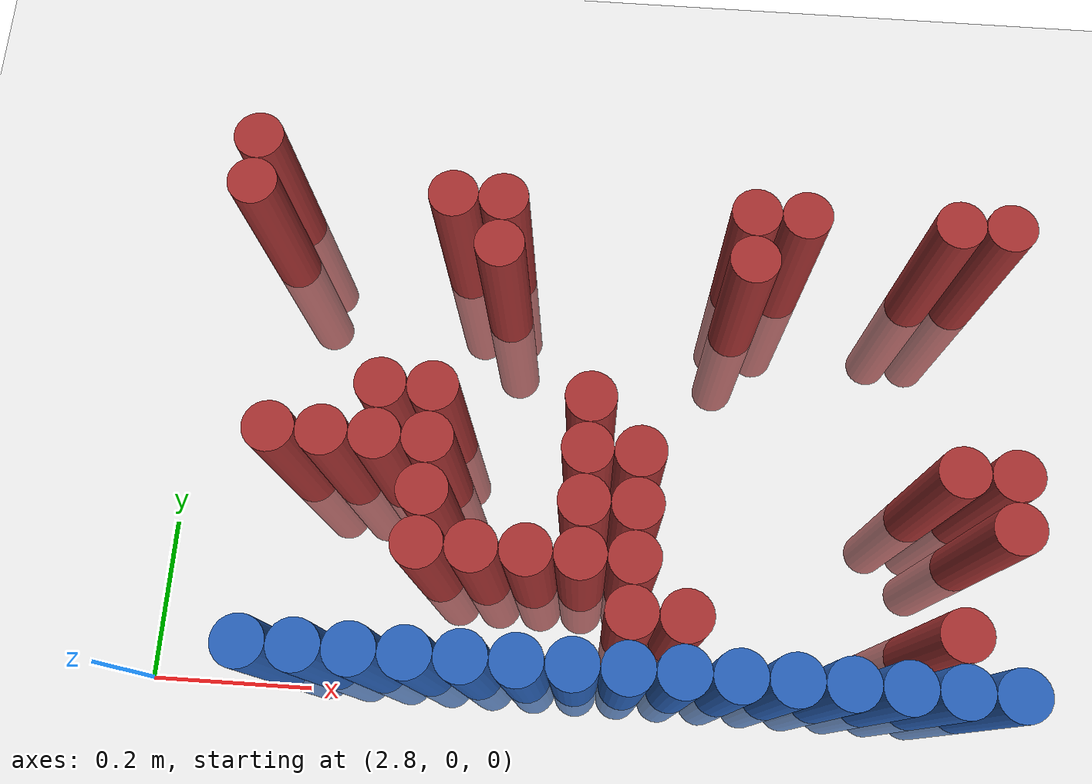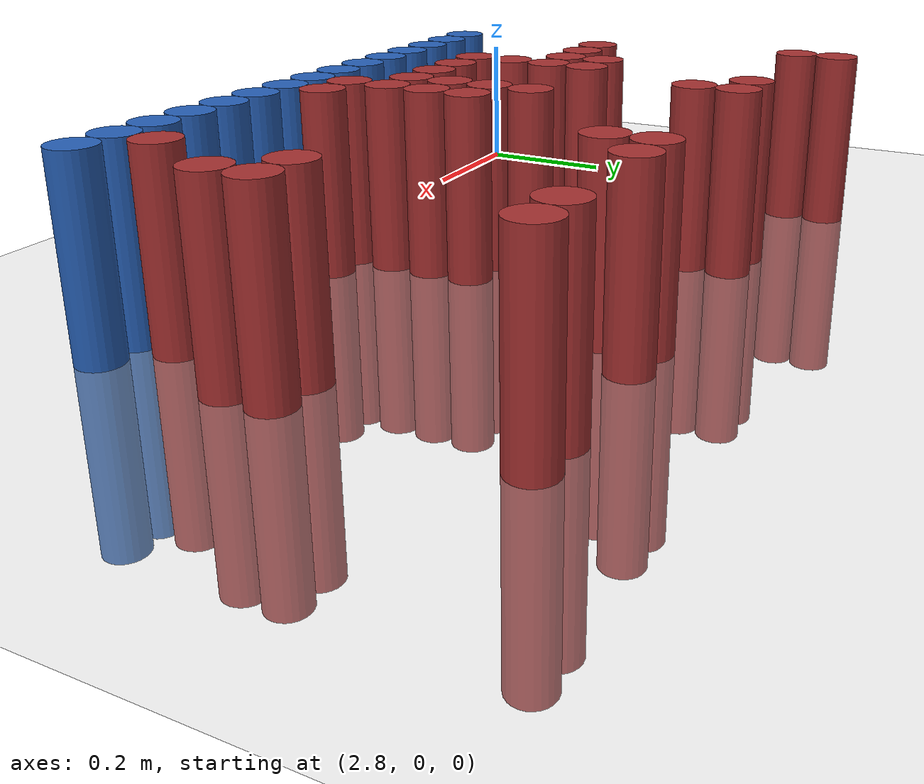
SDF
<sdf version="1.6">
 <world name="default">
  <model name="ground_plane">
   <static>1</static>
   <link name="link">
    <collision name="collision">
     <geometry><plane><normal>0 0 1</normal><size>100 100</size></plane></geometry>
     <surface><friction><ode><mu>100</mu><mu2>50</mu2></ode></friction></surface>
    </collision>
    <visual name="visual">
     <cast_shadows>0</cast_shadows>
     <geometry><plane><normal>0 0 1</normal><size>100 100</size></plane></geometry>
     <material>
      <script><uri>file://media/materials/scripts/gazebo.material</uri><name>Gazebo/Grey</name></script>
     </material>
    </visual>
   </link>
  </model>
  <model name="unit_cylinder_220">
   <static>1</static>
   <pose>2.910000 0.630000 0.000000 0.000000 0.000000 0.000000</pose>
   <link name="link">
    <inertial>
     <mass>1</mass>
     <inertia><ixx>0.145833</ixx><ixy>0</ixy><ixz>0</ixz><iyy>0.145833</iyy><iyz>0</iyz><izz>0.125</izz></inertia>
    </inertial>
    <collision name="collision">
     <geometry><cylinder><radius>0.030000</radius><length>0.5</length></cylinder></geometry>
    </collision>
    <visual name="visual">
     <geometry><cylinder><radius>0.030000</radius><length>0.5</length></cylinder></geometry>
     <material>
      <ambient>0.648000 0.192000 0.192000 1</ambient>
      <diffuse>0.648000 0.192000 0.192000 1</diffuse>
     </material>
     <material>
      <script><name>Gazebo/Grey</name><uri>file://media/materials/scripts/gazebo.material</uri></script>
     </material>
    </visual>
   </link>
  </model>
  <model name="unit_cylinder_228">
   <static>1</static>
   <pose>2.910000 0.570000 0.000000 0.000000 0.000000 0.000000</pose>
   <link name="link">
    <inertial>
     <mass>1</mass>
     <inertia><ixx>0.145833</ixx><ixy>0</ixy><ixz>0</ixz><iyy>0.145833</iyy><iyz>0</iyz><izz>0.125</izz></inertia>
    </inertial>
    <collision name="collision">
     <geometry><cylinder><radius>0.030000</radius><length>0.5</length></cylinder></geometry>
    </collision>
    <visual name="visual">
     <geometry><cylinder><radius>0.030000</radius><length>0.5</length></cylinder></geometry>
     <material>
      <ambient>0.648000 0.192000 0.192000 1</ambient>
      <diffuse>0.648000 0.192000 0.192000 1</diffuse>
     </material>
     <material>
      <script><name>Gazebo/Grey</name><uri>file://media/materials/scripts/gazebo.material</uri></script>
     </material>
    </visual>
   </link>
  </model>
  <model name="unit_cylinder_229">
   <static>1</static>
   <pose>3.150000 0.570000 0.000000 0.000000 0.000000 0.000000</pose>
   <link name="link">
    <inertial>
     <mass>1</mass>
     <inertia><ixx>0.145833</ixx><ixy>0</ixy><ixz>0</ixz><iyy>0.145833</iyy><iyz>0</iyz><izz>0.125</izz></inertia>
    </inertial>
    <collision name="collision">
     <geometry><cylinder><radius>0.030000</radius><length>0.5</length></cylinder></geometry>
    </collision>
    <visual name="visual">
     <geometry><cylinder><radius>0.030000</radius><length>0.5</length></cylinder></geometry>
     <material>
      <ambient>0.648000 0.192000 0.192000 1</ambient>
      <diffuse>0.648000 0.192000 0.192000 1</diffuse>
     </material>
     <material>
      <script><name>Gazebo/Grey</name><uri>file://media/materials/scripts/gazebo.material</uri></script>
     </material>
    </visual>
   </link>
  </model>
  <model name="unit_cylinder_230">
   <static>1</static>
   <pose>3.210000 0.570000 0.000000 0.000000 0.000000 0.000000</pose>
   <link name="link">
    <inertial>
     <mass>1</mass>
     <inertia><ixx>0.145833</ixx><ixy>0</ixy><ixz>0</ixz><iyy>0.145833</iyy><iyz>0</iyz><izz>0.125</izz></inertia>
    </inertial>
    <collision name="collision">
     <geometry><cylinder><radius>0.030000</radius><length>0.5</length></cylinder></geometry>
    </collision>
    <visual name="visual">
     <geometry><cylinder><radius>0.030000</radius><length>0.5</length></cylinder></geometry>
     <material>
      <ambient>0.648000 0.192000 0.192000 1</ambient>
      <diffuse>0.648000 0.192000 0.192000 1</diffuse>
     </material>
     <material>
      <script><name>Gazebo/Grey</name><uri>file://media/materials/scripts/gazebo.material</uri></script>
     </material>
    </visual>
   </link>
  </model>
  <model name="unit_cylinder_231">
   <static>1</static>
   <pose>3.510000 0.570000 0.000000 0.000000 0.000000 0.000000</pose>
   <link name="link">
    <inertial>
     <mass>1</mass>
     <inertia><ixx>0.145833</ixx><ixy>0</ixy><ixz>0</ixz><iyy>0.145833</iyy><iyz>0</iyz><izz>0.125</izz></inertia>
    </inertial>
    <collision name="collision">
     <geometry><cylinder><radius>0.030000</radius><length>0.5</length></cylinder></geometry>
    </collision>
    <visual name="visual">
     <geometry><cylinder><radius>0.030000</radius><length>0.5</length></cylinder></geometry>
     <material>
      <ambient>0.648000 0.192000 0.192000 1</ambient>
      <diffuse>0.648000 0.192000 0.192000 1</diffuse>
     </material>
     <material>
      <script><name>Gazebo/Grey</name><uri>file://media/materials/scripts/gazebo.material</uri></script>
     </material>
    </visual>
   </link>
  </model>
  <model name="unit_cylinder_232">
   <static>1</static>
   <pose>3.570000 0.570000 0.000000 0.000000 0.000000 0.000000</pose>
   <link name="link">
    <inertial>
     <mass>1</mass>
     <inertia><ixx>0.145833</ixx><ixy>0</ixy><ixz>0</ixz><iyy>0.145833</iyy><iyz>0</iyz><izz>0.125</izz></inertia>
    </inertial>
    <collision name="collision">
     <geometry><cylinder><radius>0.030000</radius><length>0.5</length></cylinder></geometry>
    </collision>
    <visual name="visual">
     <geometry><cylinder><radius>0.030000</radius><length>0.5</length></cylinder></geometry>
     <material>
      <ambient>0.648000 0.192000 0.192000 1</ambient>
      <diffuse>0.648000 0.192000 0.192000 1</diffuse>
     </material>
     <material>
      <script><name>Gazebo/Grey</name><uri>file://media/materials/scripts/gazebo.material</uri></script>
     </material>
    </visual>
   </link>
  </model>
  <model name="unit_cylinder_233">
   <static>1</static>
   <pose>3.750000 0.570000 0.000000 0.000000 0.000000 0.000000</pose>
   <link name="link">
    <inertial>
     <mass>1</mass>
     <inertia><ixx>0.145833</ixx><ixy>0</ixy><ixz>0</ixz><iyy>0.145833</iyy><iyz>0</iyz><izz>0.125</izz></inertia>
    </inertial>
    <collision name="collision">
     <geometry><cylinder><radius>0.030000</radius><length>0.5</length></cylinder></geometry>
    </collision>
    <visual name="visual">
     <geometry><cylinder><radius>0.030000</radius><length>0.5</length></cylinder></geometry>
     <material>
      <ambient>0.648000 0.192000 0.192000 1</ambient>
      <diffuse>0.648000 0.192000 0.192000 1</diffuse>
     </material>
     <material>
      <script><name>Gazebo/Grey</name><uri>file://media/materials/scripts/gazebo.material</uri></script>
     </material>
    </visual>
   </link>
  </model>
  <model name="unit_cylinder_234">
   <static>1</static>
   <pose>3.810000 0.570000 0.000000 0.000000 0.000000 0.000000</pose>
   <link name="link">
    <inertial>
     <mass>1</mass>
     <inertia><ixx>0.145833</ixx><ixy>0</ixy><ixz>0</ixz><iyy>0.145833</iyy><iyz>0</iyz><izz>0.125</izz></inertia>
    </inertial>
    <collision name="collision">
     <geometry><cylinder><radius>0.030000</radius><length>0.5</length></cylinder></geometry>
    </collision>
    <visual name="visual">
     <geometry><cylinder><radius>0.030000</radius><length>0.5</length></cylinder></geometry>
     <material>
      <ambient>0.648000 0.192000 0.192000 1</ambient>
      <diffuse>0.648000 0.192000 0.192000 1</diffuse>
     </material>
     <material>
      <script><name>Gazebo/Grey</name><uri>file://media/materials/scripts/gazebo.material</uri></script>
     </material>
    </visual>
   </link>
  </model>
  <model name="unit_cylinder_240">
   <static>1</static>
   <pose>3.210000 0.510000 0.000000 0.000000 0.000000 0.000000</pose>
   <link name="link">
    <inertial>
     <mass>1</mass>
     <inertia><ixx>0.145833</ixx><ixy>0</ixy><ixz>0</ixz><iyy>0.145833</iyy><iyz>0</iyz><izz>0.125</izz></inertia>
    </inertial>
    <collision name="collision">
     <geometry><cylinder><radius>0.030000</radius><length>0.5</length></cylinder></geometry>
    </collision>
    <visual name="visual">
     <geometry><cylinder><radius>0.030000</radius><length>0.5</length></cylinder></geometry>
     <material>
      <ambient>0.648000 0.192000 0.192000 1</ambient>
      <diffuse>0.648000 0.192000 0.192000 1</diffuse>
     </material>
     <material>
      <script><name>Gazebo/Grey</name><uri>file://media/materials/scripts/gazebo.material</uri></script>
     </material>
    </visual>
   </link>
  </model>
  <model name="unit_cylinder_241">
   <static>1</static>
   <pose>3.510000 0.510000 0.000000 0.000000 0.000000 0.000000</pose>
   <link name="link">
    <inertial>
     <mass>1</mass>
     <inertia><ixx>0.145833</ixx><ixy>0</ixy><ixz>0</ixz><iyy>0.145833</iyy><iyz>0</iyz><izz>0.125</izz></inertia>
    </inertial>
    <collision name="collision">
     <geometry><cylinder><radius>0.030000</radius><length>0.5</length></cylinder></geometry>
    </collision>
    <visual name="visual">
     <geometry><cylinder><radius>0.030000</radius><length>0.5</length></cylinder></geometry>
     <material>
      <ambient>0.648000 0.192000 0.192000 1</ambient>
      <diffuse>0.648000 0.192000 0.192000 1</diffuse>
     </material>
     <material>
      <script><name>Gazebo/Grey</name><uri>file://media/materials/scripts/gazebo.material</uri></script>
     </material>
    </visual>
   </link>
  </model>
  <model name="unit_cylinder_254">
   <static>1</static>
   <pose>3.090000 0.330000 0.000000 0.000000 0.000000 0.000000</pose>
   <link name="link">
    <inertial>
     <mass>1</mass>
     <inertia><ixx>0.145833</ixx><ixy>0</ixy><ixz>0</ixz><iyy>0.145833</iyy><iyz>0</iyz><izz>0.125</izz></inertia>
    </inertial>
    <collision name="collision">
     <geometry><cylinder><radius>0.030000</radius><length>0.5</length></cylinder></geometry>
    </collision>
    <visual name="visual">
     <geometry><cylinder><radius>0.030000</radius><length>0.5</length></cylinder></geometry>
     <material>
      <ambient>0.648000 0.192000 0.192000 1</ambient>
      <diffuse>0.648000 0.192000 0.192000 1</diffuse>
     </material>
     <material>
      <script><name>Gazebo/Grey</name><uri>file://media/materials/scripts/gazebo.material</uri></script>
     </material>
    </visual>
   </link>
  </model>
  <model name="unit_cylinder_255">
   <static>1</static>
   <pose>3.150000 0.330000 0.000000 0.000000 0.000000 0.000000</pose>
   <link name="link">
    <inertial>
     <mass>1</mass>
     <inertia><ixx>0.145833</ixx><ixy>0</ixy><ixz>0</ixz><iyy>0.145833</iyy><iyz>0</iyz><izz>0.125</izz></inertia>
    </inertial>
    <collision name="collision">
     <geometry><cylinder><radius>0.030000</radius><length>0.5</length></cylinder></geometry>
    </collision>
    <visual name="visual">
     <geometry><cylinder><radius>0.030000</radius><length>0.5</length></cylinder></geometry>
     <material>
      <ambient>0.648000 0.192000 0.192000 1</ambient>
      <diffuse>0.648000 0.192000 0.192000 1</diffuse>
     </material>
     <material>
      <script><name>Gazebo/Grey</name><uri>file://media/materials/scripts/gazebo.material</uri></script>
     </material>
    </visual>
   </link>
  </model>
  <model name="unit_cylinder_256">
   <static>1</static>
   <pose>3.330000 0.330000 0.000000 0.000000 0.000000 0.000000</pose>
   <link name="link">
    <inertial>
     <mass>1</mass>
     <inertia><ixx>0.145833</ixx><ixy>0</ixy><ixz>0</ixz><iyy>0.145833</iyy><iyz>0</iyz><izz>0.125</izz></inertia>
    </inertial>
    <collision name="collision">
     <geometry><cylinder><radius>0.030000</radius><length>0.5</length></cylinder></geometry>
    </collision>
    <visual name="visual">
     <geometry><cylinder><radius>0.030000</radius><length>0.5</length></cylinder></geometry>
     <material>
      <ambient>0.648000 0.192000 0.192000 1</ambient>
      <diffuse>0.648000 0.192000 0.192000 1</diffuse>
     </material>
     <material>
      <script><name>Gazebo/Grey</name><uri>file://media/materials/scripts/gazebo.material</uri></script>
     </material>
    </visual>
   </link>
  </model>
  <model name="unit_cylinder_262">
   <static>1</static>
   <pose>2.970000 0.270000 0.000000 0.000000 0.000000 0.000000</pose>
   <link name="link">
    <inertial>
     <mass>1</mass>
     <inertia><ixx>0.145833</ixx><ixy>0</ixy><ixz>0</ixz><iyy>0.145833</iyy><iyz>0</iyz><izz>0.125</izz></inertia>
    </inertial>
    <collision name="collision">
     <geometry><cylinder><radius>0.030000</radius><length>0.5</length></cylinder></geometry>
    </collision>
    <visual name="visual">
     <geometry><cylinder><radius>0.030000</radius><length>0.5</length></cylinder></geometry>
     <material>
      <ambient>0.648000 0.192000 0.192000 1</ambient>
      <diffuse>0.648000 0.192000 0.192000 1</diffuse>
     </material>
     <material>
      <script><name>Gazebo/Grey</name><uri>file://media/materials/scripts/gazebo.material</uri></script>
     </material>
    </visual>
   </link>
  </model>
  <model name="unit_cylinder_263">
   <static>1</static>
   <pose>3.030000 0.270000 0.000000 0.000000 0.000000 0.000000</pose>
   <link name="link">
    <inertial>
     <mass>1</mass>
     <inertia><ixx>0.145833</ixx><ixy>0</ixy><ixz>0</ixz><iyy>0.145833</iyy><iyz>0</iyz><izz>0.125</izz></inertia>
    </inertial>
    <collision name="collision">
     <geometry><cylinder><radius>0.030000</radius><length>0.5</length></cylinder></geometry>
    </collision>
    <visual name="visual">
     <geometry><cylinder><radius>0.030000</radius><length>0.5</length></cylinder></geometry>
     <material>
      <ambient>0.648000 0.192000 0.192000 1</ambient>
      <diffuse>0.648000 0.192000 0.192000 1</diffuse>
     </material>
     <material>
      <script><name>Gazebo/Grey</name><uri>file://media/materials/scripts/gazebo.material</uri></script>
     </material>
    </visual>
   </link>
  </model>
  <model name="unit_cylinder_264">
   <static>1</static>
   <pose>3.090000 0.270000 0.000000 0.000000 0.000000 0.000000</pose>
   <link name="link">
    <inertial>
     <mass>1</mass>
     <inertia><ixx>0.145833</ixx><ixy>0</ixy><ixz>0</ixz><iyy>0.145833</iyy><iyz>0</iyz><izz>0.125</izz></inertia>
    </inertial>
    <collision name="collision">
     <geometry><cylinder><radius>0.030000</radius><length>0.5</length></cylinder></geometry>
    </collision>
    <visual name="visual">
     <geometry><cylinder><radius>0.030000</radius><length>0.5</length></cylinder></geometry>
     <material>
      <ambient>0.648000 0.192000 0.192000 1</ambient>
      <diffuse>0.648000 0.192000 0.192000 1</diffuse>
     </material>
     <material>
      <script><name>Gazebo/Grey</name><uri>file://media/materials/scripts/gazebo.material</uri></script>
     </material>
    </visual>
   </link>
  </model>
  <model name="unit_cylinder_265">
   <static>1</static>
   <pose>3.150000 0.270000 0.000000 0.000000 0.000000 0.000000</pose>
   <link name="link">
    <inertial>
     <mass>1</mass>
     <inertia><ixx>0.145833</ixx><ixy>0</ixy><ixz>0</ixz><iyy>0.145833</iyy><iyz>0</iyz><izz>0.125</izz></inertia>
    </inertial>
    <collision name="collision">
     <geometry><cylinder><radius>0.030000</radius><length>0.5</length></cylinder></geometry>
    </collision>
    <visual name="visual">
     <geometry><cylinder><radius>0.030000</radius><length>0.5</length></cylinder></geometry>
     <material>
      <ambient>0.648000 0.192000 0.192000 1</ambient>
      <diffuse>0.648000 0.192000 0.192000 1</diffuse>
     </material>
     <material>
      <script><name>Gazebo/Grey</name><uri>file://media/materials/scripts/gazebo.material</uri></script>
     </material>
    </visual>
   </link>
  </model>
  <model name="unit_cylinder_266">
   <static>1</static>
   <pose>3.330000 0.270000 0.000000 0.000000 0.000000 0.000000</pose>
   <link name="link">
    <inertial>
     <mass>1</mass>
     <inertia><ixx>0.145833</ixx><ixy>0</ixy><ixz>0</ixz><iyy>0.145833</iyy><iyz>0</iyz><izz>0.125</izz></inertia>
    </inertial>
    <collision name="collision">
     <geometry><cylinder><radius>0.030000</radius><length>0.5</length></cylinder></geometry>
    </collision>
    <visual name="visual">
     <geometry><cylinder><radius>0.030000</radius><length>0.5</length></cylinder></geometry>
     <material>
      <ambient>0.648000 0.192000 0.192000 1</ambient>
      <diffuse>0.648000 0.192000 0.192000 1</diffuse>
     </material>
     <material>
      <script><name>Gazebo/Grey</name><uri>file://media/materials/scripts/gazebo.material</uri></script>
     </material>
    </visual>
   </link>
  </model>
  <model name="unit_cylinder_267">
   <static>1</static>
   <pose>3.390000 0.270000 0.000000 0.000000 0.000000 0.000000</pose>
   <link name="link">
    <inertial>
     <mass>1</mass>
     <inertia><ixx>0.145833</ixx><ixy>0</ixy><ixz>0</ixz><iyy>0.145833</iyy><iyz>0</iyz><izz>0.125</izz></inertia>
    </inertial>
    <collision name="collision">
     <geometry><cylinder><radius>0.030000</radius><length>0.5</length></cylinder></geometry>
    </collision>
    <visual name="visual">
     <geometry><cylinder><radius>0.030000</radius><length>0.5</length></cylinder></geometry>
     <material>
      <ambient>0.648000 0.192000 0.192000 1</ambient>
      <diffuse>0.648000 0.192000 0.192000 1</diffuse>
     </material>
     <material>
      <script><name>Gazebo/Grey</name><uri>file://media/materials/scripts/gazebo.material</uri></script>
     </material>
    </visual>
   </link>
  </model>
  <model name="unit_cylinder_268">
   <static>1</static>
   <pose>3.750000 0.270000 0.000000 0.000000 0.000000 0.000000</pose>
   <link name="link">
    <inertial>
     <mass>1</mass>
     <inertia><ixx>0.145833</ixx><ixy>0</ixy><ixz>0</ixz><iyy>0.145833</iyy><iyz>0</iyz><izz>0.125</izz></inertia>
    </inertial>
    <collision name="collision">
     <geometry><cylinder><radius>0.030000</radius><length>0.5</length></cylinder></geometry>
    </collision>
    <visual name="visual">
     <geometry><cylinder><radius>0.030000</radius><length>0.5</length></cylinder></geometry>
     <material>
      <ambient>0.648000 0.192000 0.192000 1</ambient>
      <diffuse>0.648000 0.192000 0.192000 1</diffuse>
     </material>
     <material>
      <script><name>Gazebo/Grey</name><uri>file://media/materials/scripts/gazebo.material</uri></script>
     </material>
    </visual>
   </link>
  </model>
  <model name="unit_cylinder_269">
   <static>1</static>
   <pose>3.810000 0.270000 0.000000 0.000000 0.000000 0.000000</pose>
   <link name="link">
    <inertial>
     <mass>1</mass>
     <inertia><ixx>0.145833</ixx><ixy>0</ixy><ixz>0</ixz><iyy>0.145833</iyy><iyz>0</iyz><izz>0.125</izz></inertia>
    </inertial>
    <collision name="collision">
     <geometry><cylinder><radius>0.030000</radius><length>0.5</length></cylinder></geometry>
    </collision>
    <visual name="visual">
     <geometry><cylinder><radius>0.030000</radius><length>0.5</length></cylinder></geometry>
     <material>
      <ambient>0.648000 0.192000 0.192000 1</ambient>
      <diffuse>0.648000 0.192000 0.192000 1</diffuse>
     </material>
     <material>
      <script><name>Gazebo/Grey</name><uri>file://media/materials/scripts/gazebo.material</uri></script>
     </material>
    </visual>
   </link>
  </model>
  <model name="unit_cylinder_275">
   <static>1</static>
   <pose>3.150000 0.210000 0.000000 0.000000 0.000000 0.000000</pose>
   <link name="link">
    <inertial>
     <mass>1</mass>
     <inertia><ixx>0.145833</ixx><ixy>0</ixy><ixz>0</ixz><iyy>0.145833</iyy><iyz>0</iyz><izz>0.125</izz></inertia>
    </inertial>
    <collision name="collision">
     <geometry><cylinder><radius>0.030000</radius><length>0.5</length></cylinder></geometry>
    </collision>
    <visual name="visual">
     <geometry><cylinder><radius>0.030000</radius><length>0.5</length></cylinder></geometry>
     <material>
      <ambient>0.648000 0.192000 0.192000 1</ambient>
      <diffuse>0.648000 0.192000 0.192000 1</diffuse>
     </material>
     <material>
      <script><name>Gazebo/Grey</name><uri>file://media/materials/scripts/gazebo.material</uri></script>
     </material>
    </visual>
   </link>
  </model>
  <model name="unit_cylinder_276">
   <static>1</static>
   <pose>3.330000 0.210000 0.000000 0.000000 0.000000 0.000000</pose>
   <link name="link">
    <inertial>
     <mass>1</mass>
     <inertia><ixx>0.145833</ixx><ixy>0</ixy><ixz>0</ixz><iyy>0.145833</iyy><iyz>0</iyz><izz>0.125</izz></inertia>
    </inertial>
    <collision name="collision">
     <geometry><cylinder><radius>0.030000</radius><length>0.5</length></cylinder></geometry>
    </collision>
    <visual name="visual">
     <geometry><cylinder><radius>0.030000</radius><length>0.5</length></cylinder></geometry>
     <material>
      <ambient>0.648000 0.192000 0.192000 1</ambient>
      <diffuse>0.648000 0.192000 0.192000 1</diffuse>
     </material>
     <material>
      <script><name>Gazebo/Grey</name><uri>file://media/materials/scripts/gazebo.material</uri></script>
     </material>
    </visual>
   </link>
  </model>
  <model name="unit_cylinder_277">
   <static>1</static>
   <pose>3.390000 0.210000 0.000000 0.000000 0.000000 0.000000</pose>
   <link name="link">
    <inertial>
     <mass>1</mass>
     <inertia><ixx>0.145833</ixx><ixy>0</ixy><ixz>0</ixz><iyy>0.145833</iyy><iyz>0</iyz><izz>0.125</izz></inertia>
    </inertial>
    <collision name="collision">
     <geometry><cylinder><radius>0.030000</radius><length>0.5</length></cylinder></geometry>
    </collision>
    <visual name="visual">
     <geometry><cylinder><radius>0.030000</radius><length>0.5</length></cylinder></geometry>
     <material>
      <ambient>0.648000 0.192000 0.192000 1</ambient>
      <diffuse>0.648000 0.192000 0.192000 1</diffuse>
     </material>
     <material>
      <script><name>Gazebo/Grey</name><uri>file://media/materials/scripts/gazebo.material</uri></script>
     </material>
    </visual>
   </link>
  </model>
  <model name="unit_cylinder_278">
   <static>1</static>
   <pose>3.810000 0.210000 0.000000 0.000000 0.000000 0.000000</pose>
   <link name="link">
    <inertial>
     <mass>1</mass>
     <inertia><ixx>0.145833</ixx><ixy>0</ixy><ixz>0</ixz><iyy>0.145833</iyy><iyz>0</iyz><izz>0.125</izz></inertia>
    </inertial>
    <collision name="collision">
     <geometry><cylinder><radius>0.030000</radius><length>0.5</length></cylinder></geometry>
    </collision>
    <visual name="visual">
     <geometry><cylinder><radius>0.030000</radius><length>0.5</length></cylinder></geometry>
     <material>
      <ambient>0.648000 0.192000 0.192000 1</ambient>
      <diffuse>0.648000 0.192000 0.192000 1</diffuse>
     </material>
     <material>
      <script><name>Gazebo/Grey</name><uri>file://media/materials/scripts/gazebo.material</uri></script>
     </material>
    </visual>
   </link>
  </model>
  <model name="unit_cylinder_286">
   <static>1</static>
   <pose>3.150000 0.150000 0.000000 0.000000 0.000000 0.000000</pose>
   <link name="link">
    <inertial>
     <mass>1</mass>
     <inertia><ixx>0.145833</ixx><ixy>0</ixy><ixz>0</ixz><iyy>0.145833</iyy><iyz>0</iyz><izz>0.125</izz></inertia>
    </inertial>
    <collision name="collision">
     <geometry><cylinder><radius>0.030000</radius><length>0.5</length></cylinder></geometry>
    </collision>
    <visual name="visual">
     <geometry><cylinder><radius>0.030000</radius><length>0.5</length></cylinder></geometry>
     <material>
      <ambient>0.648000 0.192000 0.192000 1</ambient>
      <diffuse>0.648000 0.192000 0.192000 1</diffuse>
     </material>
     <material>
      <script><name>Gazebo/Grey</name><uri>file://media/materials/scripts/gazebo.material</uri></script>
     </material>
    </visual>
   </link>
  </model>
  <model name="unit_cylinder_287">
   <static>1</static>
   <pose>3.210000 0.150000 0.000000 0.000000 0.000000 0.000000</pose>
   <link name="link">
    <inertial>
     <mass>1</mass>
     <inertia><ixx>0.145833</ixx><ixy>0</ixy><ixz>0</ixz><iyy>0.145833</iyy><iyz>0</iyz><izz>0.125</izz></inertia>
    </inertial>
    <collision name="collision">
     <geometry><cylinder><radius>0.030000</radius><length>0.5</length></cylinder></geometry>
    </collision>
    <visual name="visual">
     <geometry><cylinder><radius>0.030000</radius><length>0.5</length></cylinder></geometry>
     <material>
      <ambient>0.648000 0.192000 0.192000 1</ambient>
      <diffuse>0.648000 0.192000 0.192000 1</diffuse>
     </material>
     <material>
      <script><name>Gazebo/Grey</name><uri>file://media/materials/scripts/gazebo.material</uri></script>
     </material>
    </visual>
   </link>
  </model>
  <model name="unit_cylinder_288">
   <static>1</static>
   <pose>3.270000 0.150000 0.000000 0.000000 0.000000 0.000000</pose>
   <link name="link">
    <inertial>
     <mass>1</mass>
     <inertia><ixx>0.145833</ixx><ixy>0</ixy><ixz>0</ixz><iyy>0.145833</iyy><iyz>0</iyz><izz>0.125</izz></inertia>
    </inertial>
    <collision name="collision">
     <geometry><cylinder><radius>0.030000</radius><length>0.5</length></cylinder></geometry>
    </collision>
    <visual name="visual">
     <geometry><cylinder><radius>0.030000</radius><length>0.5</length></cylinder></geometry>
     <material>
      <ambient>0.648000 0.192000 0.192000 1</ambient>
      <diffuse>0.648000 0.192000 0.192000 1</diffuse>
     </material>
     <material>
      <script><name>Gazebo/Grey</name><uri>file://media/materials/scripts/gazebo.material</uri></script>
     </material>
    </visual>
   </link>
  </model>
  <model name="unit_cylinder_289">
   <static>1</static>
   <pose>3.330000 0.150000 0.000000 0.000000 0.000000 0.000000</pose>
   <link name="link">
    <inertial>
     <mass>1</mass>
     <inertia><ixx>0.145833</ixx><ixy>0</ixy><ixz>0</ixz><iyy>0.145833</iyy><iyz>0</iyz><izz>0.125</izz></inertia>
    </inertial>
    <collision name="collision">
     <geometry><cylinder><radius>0.030000</radius><length>0.5</length></cylinder></geometry>
    </collision>
    <visual name="visual">
     <geometry><cylinder><radius>0.030000</radius><length>0.5</length></cylinder></geometry>
     <material>
      <ambient>0.648000 0.192000 0.192000 1</ambient>
      <diffuse>0.648000 0.192000 0.192000 1</diffuse>
     </material>
     <material>
      <script><name>Gazebo/Grey</name><uri>file://media/materials/scripts/gazebo.material</uri></script>
     </material>
    </visual>
   </link>
  </model>
  <model name="unit_cylinder_290">
   <static>1</static>
   <pose>3.390000 0.150000 0.000000 0.000000 0.000000 0.000000</pose>
   <link name="link">
    <inertial>
     <mass>1</mass>
     <inertia><ixx>0.145833</ixx><ixy>0</ixy><ixz>0</ixz><iyy>0.145833</iyy><iyz>0</iyz><izz>0.125</izz></inertia>
    </inertial>
    <collision name="collision">
     <geometry><cylinder><radius>0.030000</radius><length>0.5</length></cylinder></geometry>
    </collision>
    <visual name="visual">
     <geometry><cylinder><radius>0.030000</radius><length>0.5</length></cylinder></geometry>
     <material>
      <ambient>0.648000 0.192000 0.192000 1</ambient>
      <diffuse>0.648000 0.192000 0.192000 1</diffuse>
     </material>
     <material>
      <script><name>Gazebo/Grey</name><uri>file://media/materials/scripts/gazebo.material</uri></script>
     </material>
    </visual>
   </link>
  </model>
  <model name="unit_cylinder_301">
   <static>1</static>
   <pose>3.390000 0.090000 0.000000 0.000000 0.000000 0.000000</pose>
   <link name="link">
    <inertial>
     <mass>1</mass>
     <inertia><ixx>0.145833</ixx><ixy>0</ixy><ixz>0</ixz><iyy>0.145833</iyy><iyz>0</iyz><izz>0.125</izz></inertia>
    </inertial>
    <collision name="collision">
     <geometry><cylinder><radius>0.030000</radius><length>0.5</length></cylinder></geometry>
    </collision>
    <visual name="visual">
     <geometry><cylinder><radius>0.030000</radius><length>0.5</length></cylinder></geometry>
     <material>
      <ambient>0.648000 0.192000 0.192000 1</ambient>
      <diffuse>0.648000 0.192000 0.192000 1</diffuse>
     </material>
     <material>
      <script><name>Gazebo/Grey</name><uri>file://media/materials/scripts/gazebo.material</uri></script>
     </material>
    </visual>
   </link>
  </model>
  <model name="unit_cylinder_302">
   <static>1</static>
   <pose>3.450000 0.090000 0.000000 0.000000 0.000000 0.000000</pose>
   <link name="link">
    <inertial>
     <mass>1</mass>
     <inertia><ixx>0.145833</ixx><ixy>0</ixy><ixz>0</ixz><iyy>0.145833</iyy><iyz>0</iyz><izz>0.125</izz></inertia>
    </inertial>
    <collision name="collision">
     <geometry><cylinder><radius>0.030000</radius><length>0.5</length></cylinder></geometry>
    </collision>
    <visual name="visual">
     <geometry><cylinder><radius>0.030000</radius><length>0.5</length></cylinder></geometry>
     <material>
      <ambient>0.648000 0.192000 0.192000 1</ambient>
      <diffuse>0.648000 0.192000 0.192000 1</diffuse>
     </material>
     <material>
      <script><name>Gazebo/Grey</name><uri>file://media/materials/scripts/gazebo.material</uri></script>
     </material>
    </visual>
   </link>
  </model>
  <model name="unit_cylinder_303">
   <static>1</static>
   <pose>3.750000 0.090000 0.000000 0.000000 0.000000 0.000000</pose>
   <link name="link">
    <inertial>
     <mass>1</mass>
     <inertia><ixx>0.145833</ixx><ixy>0</ixy><ixz>0</ixz><iyy>0.145833</iyy><iyz>0</iyz><izz>0.125</izz></inertia>
    </inertial>
    <collision name="collision">
     <geometry><cylinder><radius>0.030000</radius><length>0.5</length></cylinder></geometry>
    </collision>
    <visual name="visual">
     <geometry><cylinder><radius>0.030000</radius><length>0.5</length></cylinder></geometry>
     <material>
      <ambient>0.648000 0.192000 0.192000 1</ambient>
      <diffuse>0.648000 0.192000 0.192000 1</diffuse>
     </material>
     <material>
      <script><name>Gazebo/Grey</name><uri>file://media/materials/scripts/gazebo.material</uri></script>
     </material>
    </visual>
   </link>
  </model>
  <model name="unit_cylinder_319">
   <static>1</static>
   <pose>2.970000 0.030000 0.000000 0.000000 0.000000 0.000000</pose>
   <link name="link">
    <inertial>
     <mass>1</mass>
     <inertia><ixx>0.145833</ixx><ixy>0</ixy><ixz>0</ixz><iyy>0.145833</iyy><iyz>0</iyz><izz>0.125</izz></inertia>
    </inertial>
    <collision name="collision">
     <geometry><cylinder><radius>0.030000</radius><length>0.5</length></cylinder></geometry>
    </collision>
    <visual name="visual">
     <geometry><cylinder><radius>0.030000</radius><length>0.5</length></cylinder></geometry>
     <material>
      <ambient>0.152000 0.379000 0.720000 1</ambient>
      <diffuse>0.152000 0.379000 0.720000 1</diffuse>
     </material>
     <material>
      <script><name>Gazebo/Grey</name><uri>file://media/materials/scripts/gazebo.material</uri></script>
     </material>
    </visual>
   </link>
  </model>
  <model name="unit_cylinder_320">
   <static>1</static>
   <pose>3.030000 0.030000 0.000000 0.000000 0.000000 0.000000</pose>
   <link name="link">
    <inertial>
     <mass>1</mass>
     <inertia><ixx>0.145833</ixx><ixy>0</ixy><ixz>0</ixz><iyy>0.145833</iyy><iyz>0</iyz><izz>0.125</izz></inertia>
    </inertial>
    <collision name="collision">
     <geometry><cylinder><radius>0.030000</radius><length>0.5</length></cylinder></geometry>
    </collision>
    <visual name="visual">
     <geometry><cylinder><radius>0.030000</radius><length>0.5</length></cylinder></geometry>
     <material>
      <ambient>0.152000 0.379000 0.720000 1</ambient>
      <diffuse>0.152000 0.379000 0.720000 1</diffuse>
     </material>
     <material>
      <script><name>Gazebo/Grey</name><uri>file://media/materials/scripts/gazebo.material</uri></script>
     </material>
    </visual>
   </link>
  </model>
  <model name="unit_cylinder_321">
   <static>1</static>
   <pose>3.090000 0.030000 0.000000 0.000000 0.000000 0.000000</pose>
   <link name="link">
    <inertial>
     <mass>1</mass>
     <inertia><ixx>0.145833</ixx><ixy>0</ixy><ixz>0</ixz><iyy>0.145833</iyy><iyz>0</iyz><izz>0.125</izz></inertia>
    </inertial>
    <collision name="collision">
     <geometry><cylinder><radius>0.030000</radius><length>0.5</length></cylinder></geometry>
    </collision>
    <visual name="visual">
     <geometry><cylinder><radius>0.030000</radius><length>0.5</length></cylinder></geometry>
     <material>
      <ambient>0.152000 0.379000 0.720000 1</ambient>
      <diffuse>0.152000 0.379000 0.720000 1</diffuse>
     </material>
     <material>
      <script><name>Gazebo/Grey</name><uri>file://media/materials/scripts/gazebo.material</uri></script>
     </material>
    </visual>
   </link>
  </model>
  <model name="unit_cylinder_322">
   <static>1</static>
   <pose>3.150000 0.030000 0.000000 0.000000 0.000000 0.000000</pose>
   <link name="link">
    <inertial>
     <mass>1</mass>
     <inertia><ixx>0.145833</ixx><ixy>0</ixy><ixz>0</ixz><iyy>0.145833</iyy><iyz>0</iyz><izz>0.125</izz></inertia>
    </inertial>
    <collision name="collision">
     <geometry><cylinder><radius>0.030000</radius><length>0.5</length></cylinder></geometry>
    </collision>
    <visual name="visual">
     <geometry><cylinder><radius>0.030000</radius><length>0.5</length></cylinder></geometry>
     <material>
      <ambient>0.152000 0.379000 0.720000 1</ambient>
      <diffuse>0.152000 0.379000 0.720000 1</diffuse>
     </material>
     <material>
      <script><name>Gazebo/Grey</name><uri>file://media/materials/scripts/gazebo.material</uri></script>
     </material>
    </visual>
   </link>
  </model>
  <model name="unit_cylinder_323">
   <static>1</static>
   <pose>3.210000 0.030000 0.000000 0.000000 0.000000 0.000000</pose>
   <link name="link">
    <inertial>
     <mass>1</mass>
     <inertia><ixx>0.145833</ixx><ixy>0</ixy><ixz>0</ixz><iyy>0.145833</iyy><iyz>0</iyz><izz>0.125</izz></inertia>
    </inertial>
    <collision name="collision">
     <geometry><cylinder><radius>0.030000</radius><length>0.5</length></cylinder></geometry>
    </collision>
    <visual name="visual">
     <geometry><cylinder><radius>0.030000</radius><length>0.5</length></cylinder></geometry>
     <material>
      <ambient>0.152000 0.379000 0.720000 1</ambient>
      <diffuse>0.152000 0.379000 0.720000 1</diffuse>
     </material>
     <material>
      <script><name>Gazebo/Grey</name><uri>file://media/materials/scripts/gazebo.material</uri></script>
     </material>
    </visual>
   </link>
  </model>
  <model name="unit_cylinder_324">
   <static>1</static>
   <pose>3.270000 0.030000 0.000000 0.000000 0.000000 0.000000</pose>
   <link name="link">
    <inertial>
     <mass>1</mass>
     <inertia><ixx>0.145833</ixx><ixy>0</ixy><ixz>0</ixz><iyy>0.145833</iyy><iyz>0</iyz><izz>0.125</izz></inertia>
    </inertial>
    <collision name="collision">
     <geometry><cylinder><radius>0.030000</radius><length>0.5</length></cylinder></geometry>
    </collision>
    <visual name="visual">
     <geometry><cylinder><radius>0.030000</radius><length>0.5</length></cylinder></geometry>
     <material>
      <ambient>0.152000 0.379000 0.720000 1</ambient>
      <diffuse>0.152000 0.379000 0.720000 1</diffuse>
     </material>
     <material>
      <script><name>Gazebo/Grey</name><uri>file://media/materials/scripts/gazebo.material</uri></script>
     </material>
    </visual>
   </link>
  </model>
  <model name="unit_cylinder_325">
   <static>1</static>
   <pose>3.330000 0.030000 0.000000 0.000000 0.000000 0.000000</pose>
   <link name="link">
    <inertial>
     <mass>1</mass>
     <inertia><ixx>0.145833</ixx><ixy>0</ixy><ixz>0</ixz><iyy>0.145833</iyy><iyz>0</iyz><izz>0.125</izz></inertia>
    </inertial>
    <collision name="collision">
     <geometry><cylinder><radius>0.030000</radius><length>0.5</length></cylinder></geometry>
    </collision>
    <visual name="visual">
     <geometry><cylinder><radius>0.030000</radius><length>0.5</length></cylinder></geometry>
     <material>
      <ambient>0.152000 0.379000 0.720000 1</ambient>
      <diffuse>0.152000 0.379000 0.720000 1</diffuse>
     </material>
     <material>
      <script><name>Gazebo/Grey</name><uri>file://media/materials/scripts/gazebo.material</uri></script>
     </material>
    </visual>
   </link>
  </model>
  <model name="unit_cylinder_326">
   <static>1</static>
   <pose>3.390000 0.030000 0.000000 0.000000 0.000000 0.000000</pose>
   <link name="link">
    <inertial>
     <mass>1</mass>
     <inertia><ixx>0.145833</ixx><ixy>0</ixy><ixz>0</ixz><iyy>0.145833</iyy><iyz>0</iyz><izz>0.125</izz></inertia>
    </inertial>
    <collision name="collision">
     <geometry><cylinder><radius>0.030000</radius><length>0.5</length></cylinder></geometry>
    </collision>
    <visual name="visual">
     <geometry><cylinder><radius>0.030000</radius><length>0.5</length></cylinder></geometry>
     <material>
      <ambient>0.152000 0.379000 0.720000 1</ambient>
      <diffuse>0.152000 0.379000 0.720000 1</diffuse>
     </material>
     <material>
      <script><name>Gazebo/Grey</name><uri>file://media/materials/scripts/gazebo.material</uri></script>
     </material>
    </visual>
   </link>
  </model>
  <model name="unit_cylinder_327">
   <static>1</static>
   <pose>3.450000 0.030000 0.000000 0.000000 0.000000 0.000000</pose>
   <link name="link">
    <inertial>
     <mass>1</mass>
     <inertia><ixx>0.145833</ixx><ixy>0</ixy><ixz>0</ixz><iyy>0.145833</iyy><iyz>0</iyz><izz>0.125</izz></inertia>
    </inertial>
    <collision name="collision">
     <geometry><cylinder><radius>0.030000</radius><length>0.5</length></cylinder></geometry>
    </collision>
    <visual name="visual">
     <geometry><cylinder><radius>0.030000</radius><length>0.5</length></cylinder></geometry>
     <material>
      <ambient>0.152000 0.379000 0.720000 1</ambient>
      <diffuse>0.152000 0.379000 0.720000 1</diffuse>
     </material>
     <material>
      <script><name>Gazebo/Grey</name><uri>file://media/materials/scripts/gazebo.material</uri></script>
     </material>
    </visual>
   </link>
  </model>
  <model name="unit_cylinder_328">
   <static>1</static>
   <pose>3.510000 0.030000 0.000000 0.000000 0.000000 0.000000</pose>
   <link name="link">
    <inertial>
     <mass>1</mass>
     <inertia><ixx>0.145833</ixx><ixy>0</ixy><ixz>0</ixz><iyy>0.145833</iyy><iyz>0</iyz><izz>0.125</izz></inertia>
    </inertial>
    <collision name="collision">
     <geometry><cylinder><radius>0.030000</radius><length>0.5</length></cylinder></geometry>
    </collision>
    <visual name="visual">
     <geometry><cylinder><radius>0.030000</radius><length>0.5</length></cylinder></geometry>
     <material>
      <ambient>0.152000 0.379000 0.720000 1</ambient>
      <diffuse>0.152000 0.379000 0.720000 1</diffuse>
     </material>
     <material>
      <script><name>Gazebo/Grey</name><uri>file://media/materials/scripts/gazebo.material</uri></script>
     </material>
    </visual>
   </link>
  </model>
  <model name="unit_cylinder_329">
   <static>1</static>
   <pose>3.570000 0.030000 0.000000 0.000000 0.000000 0.000000</pose>
   <link name="link">
    <inertial>
     <mass>1</mass>
     <inertia><ixx>0.145833</ixx><ixy>0</ixy><ixz>0</ixz><iyy>0.145833</iyy><iyz>0</iyz><izz>0.125</izz></inertia>
    </inertial>
    <collision name="collision">
     <geometry><cylinder><radius>0.030000</radius><length>0.5</length></cylinder></geometry>
    </collision>
    <visual name="visual">
     <geometry><cylinder><radius>0.030000</radius><length>0.5</length></cylinder></geometry>
     <material>
      <ambient>0.152000 0.379000 0.720000 1</ambient>
      <diffuse>0.152000 0.379000 0.720000 1</diffuse>
     </material>
     <material>
      <script><name>Gazebo/Grey</name><uri>file://media/materials/scripts/gazebo.material</uri></script>
     </material>
    </visual>
   </link>
  </model>
  <model name="unit_cylinder_330">
   <static>1</static>
   <pose>3.630000 0.030000 0.000000 0.000000 0.000000 0.000000</pose>
   <link name="link">
    <inertial>
     <mass>1</mass>
     <inertia><ixx>0.145833</ixx><ixy>0</ixy><ixz>0</ixz><iyy>0.145833</iyy><iyz>0</iyz><izz>0.125</izz></inertia>
    </inertial>
    <collision name="collision">
     <geometry><cylinder><radius>0.030000</radius><length>0.5</length></cylinder></geometry>
    </collision>
    <visual name="visual">
     <geometry><cylinder><radius>0.030000</radius><length>0.5</length></cylinder></geometry>
     <material>
      <ambient>0.152000 0.379000 0.720000 1</ambient>
      <diffuse>0.152000 0.379000 0.720000 1</diffuse>
     </material>
     <material>
      <script><name>Gazebo/Grey</name><uri>file://media/materials/scripts/gazebo.material</uri></script>
     </material>
    </visual>
   </link>
  </model>
  <model name="unit_cylinder_331">
   <static>1</static>
   <pose>3.690000 0.030000 0.000000 0.000000 0.000000 0.000000</pose>
   <link name="link">
    <inertial>
     <mass>1</mass>
     <inertia><ixx>0.145833</ixx><ixy>0</ixy><ixz>0</ixz><iyy>0.145833</iyy><iyz>0</iyz><izz>0.125</izz></inertia>
    </inertial>
    <collision name="collision">
     <geometry><cylinder><radius>0.030000</radius><length>0.5</length></cylinder></geometry>
    </collision>
    <visual name="visual">
     <geometry><cylinder><radius>0.030000</radius><length>0.5</length></cylinder></geometry>
     <material>
      <ambient>0.152000 0.379000 0.720000 1</ambient>
      <diffuse>0.152000 0.379000 0.720000 1</diffuse>
     </material>
     <material>
      <script><name>Gazebo/Grey</name><uri>file://media/materials/scripts/gazebo.material</uri></script>
     </material>
    </visual>
   </link>
  </model>
  <model name="unit_cylinder_332">
   <static>1</static>
   <pose>3.750000 0.030000 0.000000 0.000000 0.000000 0.000000</pose>
   <link name="link">
    <inertial>
     <mass>1</mass>
     <inertia><ixx>0.145833</ixx><ixy>0</ixy><ixz>0</ixz><iyy>0.145833</iyy><iyz>0</iyz><izz>0.125</izz></inertia>
    </inertial>
    <collision name="collision">
     <geometry><cylinder><radius>0.030000</radius><length>0.5</length></cylinder></geometry>
    </collision>
    <visual name="visual">
     <geometry><cylinder><radius>0.030000</radius><length>0.5</length></cylinder></geometry>
     <material>
      <ambient>0.152000 0.379000 0.720000 1</ambient>
      <diffuse>0.152000 0.379000 0.720000 1</diffuse>
     </material>
     <material>
      <script><name>Gazebo/Grey</name><uri>file://media/materials/scripts/gazebo.material</uri></script>
     </material>
    </visual>
   </link>
  </model>
  <model name="unit_cylinder_333">
   <static>1</static>
   <pose>3.810000 0.030000 0.000000 0.000000 0.000000 0.000000</pose>
   <link name="link">
    <inertial>
     <mass>1</mass>
     <inertia><ixx>0.145833</ixx><ixy>0</ixy><ixz>0</ixz><iyy>0.145833</iyy><iyz>0</iyz><izz>0.125</izz></inertia>
    </inertial>
    <collision name="collision">
     <geometry><cylinder><radius>0.030000</radius><length>0.5</length></cylinder></geometry>
    </collision>
    <visual name="visual">
     <geometry><cylinder><radius>0.030000</radius><length>0.5</length></cylinder></geometry>
     <material>
      <ambient>0.152000 0.379000 0.720000 1</ambient>
      <diffuse>0.152000 0.379000 0.720000 1</diffuse>
     </material>
     <material>
      <script><name>Gazebo/Grey</name><uri>file://media/materials/scripts/gazebo.material</uri></script>
     </material>
    </visual>
   </link>
  </model>
 </world>
</sdf>
